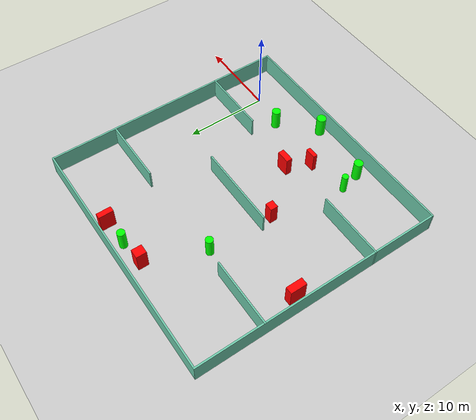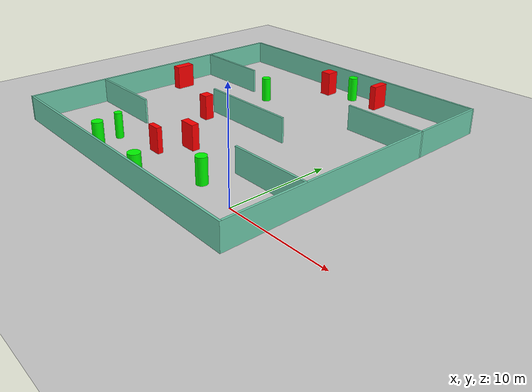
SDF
<sdf version="1.7">
 <world name="default">
  <light name="sun" type="directional">
   <pose>0 0 10 0 -0 0</pose>
   <diffuse>0.8 0.8 0.8 1</diffuse>
   <specular>0.2 0.2 0.2 1</specular>
   <attenuation>
    <range>1000</range>
    <constant>0.9</constant>
    <linear>0.01</linear>
    <quadratic>0.001</quadratic>
   </attenuation>
   <direction>-0.5 0.1 -0.9</direction>
   <spot><inner_angle>0</inner_angle><outer_angle>0</outer_angle><falloff>0</falloff></spot>
  </light>
  <model name="ground_plane">
   <static>1</static>
   <link name="link">
    <collision name="collision">
     <geometry><plane><normal>0 0 1</normal><size>100 100</size></plane></geometry>
     <surface>
      <contact><collide_bitmask>65535</collide_bitmask></contact>
      <friction><ode><mu>100</mu><mu2>50</mu2></ode></friction>
     </surface>
    </collision>
    <visual name="visual">
     <cast_shadows>0</cast_shadows>
     <geometry><plane><normal>0 0 1</normal><size>100 100</size></plane></geometry>
     <material>
      <script><uri>file://media/materials/scripts/gazebo.material</uri><name>Gazebo/Grey</name></script>
     </material>
    </visual>
   </link>
  </model>
  <gravity>0 0 -9.8</gravity>
  <magnetic_field>6e-06 2.3e-05 -4.2e-05</magnetic_field>
  <atmosphere type="adiabatic"/>
  <physics type="ode">
   <max_step_size>0.001</max_step_size>
   <real_time_factor>1</real_time_factor>
   <real_time_update_rate>1000</real_time_update_rate>
  </physics>
  <scene><ambient>0.4 0.4 0.4 1</ambient><background>0.7 0.7 0.7 1</background><shadows>1</shadows></scene>
  <spherical_coordinates>
   <surface_model>EARTH_WGS84</surface_model>
   <latitude_deg>0</latitude_deg>
   <longitude_deg>0</longitude_deg>
   <elevation>0</elevation>
   <heading_deg>0</heading_deg>
  </spherical_coordinates>
  <model name="my_base_walls">
   <link name="Wall_10">
    <collision name="Wall_10_Collision">
     <geometry><box><size>8.2 0.2 2.5</size></box></geometry>
     <pose>0 0 1.25 0 -0 0</pose>
    </collision>
    <visual name="Wall_10_Visual">
     <pose>0 0 1.25 0 -0 0</pose>
     <geometry><box><size>8.2 0.2 2.5</size></box></geometry>
     <material>
      <script><uri>file://media/materials/scripts/gazebo.material</uri><name>Gazebo/Grey</name></script>
      <ambient>0.435294 0.796078 0.67451 1</ambient>
     </material>
     <meta><layer>0</layer></meta>
    </visual>
    <pose>-11 -7 0 0 -0 0</pose>
   </link>
   <link name="Wall_12">
    <collision name="Wall_12_Collision">
     <geometry><box><size>8.2 0.2 2.5</size></box></geometry>
     <pose>0 0 1.25 0 -0 0</pose>
    </collision>
    <visual name="Wall_12_Visual">
     <pose>0 0 1.25 0 -0 0</pose>
     <geometry><box><size>8.2 0.2 2.5</size></box></geometry>
     <material>
      <script><uri>file://media/materials/scripts/gazebo.material</uri><name>Gazebo/Grey</name></script>
      <ambient>0.435294 0.796078 0.67451 1</ambient>
     </material>
     <meta><layer>0</layer></meta>
    </visual>
    <pose>-11 7 0 0 -0 0</pose>
   </link>
   <link name="Wall_14">
    <collision name="Wall_14_Collision">
     <geometry><box><size>8.2 0.2 2.5</size></box></geometry>
     <pose>0 0 1.25 0 -0 0</pose>
    </collision>
    <visual name="Wall_14_Visual">
     <pose>0 0 1.25 0 -0 0</pose>
     <geometry><box><size>8.2 0.2 2.5</size></box></geometry>
     <material>
      <script><uri>file://media/materials/scripts/gazebo.material</uri><name>Gazebo/Grey</name></script>
      <ambient>0.435294 0.796078 0.67451 1</ambient>
     </material>
     <meta><layer>0</layer></meta>
    </visual>
    <pose>11 7 0 0 -0 3.14159</pose>
   </link>
   <link name="Wall_16">
    <collision name="Wall_16_Collision">
     <geometry><box><size>10.2 0.2 2.5</size></box></geometry>
     <pose>0 0 1.25 0 -0 0</pose>
    </collision>
    <visual name="Wall_16_Visual">
     <pose>0 0 1.25 0 -0 0</pose>
     <geometry><box><size>10.2 0.2 2.5</size></box></geometry>
     <material>
      <script><uri>file://media/materials/scripts/gazebo.material</uri><name>Gazebo/Grey</name></script>
      <ambient>0.435294 0.796078 0.67451 1</ambient>
     </material>
     <meta><layer>0</layer></meta>
    </visual>
    <pose>0 0 0 0 -0 3.14159</pose>
   </link>
   <link name="Wall_2">
    <collision name="Wall_2_Collision">
     <geometry><box><size>30.2 0.2 2.5</size></box></geometry>
     <pose>0 0 1.25 0 -0 0</pose>
    </collision>
    <visual name="Wall_2_Visual">
     <pose>0 0 1.25 0 -0 0</pose>
     <geometry><box><size>30.2 0.2 2.5</size></box></geometry>
     <material>
      <script><uri>file://media/materials/scripts/gazebo.material</uri><name>Gazebo/Grey</name></script>
      <ambient>0.435294 0.796078 0.67451 1</ambient>
     </material>
     <meta><layer>0</layer></meta>
    </visual>
    <pose>0 -15 0 0 -0 3.14159</pose>
   </link>
   <link name="Wall_3">
    <collision name="Wall_3_Collision">
     <geometry><box><size>30.2 0.2 2.5</size></box></geometry>
     <pose>0 0 1.25 0 -0 0</pose>
    </collision>
    <visual name="Wall_3_Visual">
     <pose>0 0 1.25 0 -0 0</pose>
     <geometry><box><size>30.2 0.2 2.5</size></box></geometry>
     <material>
      <script><uri>file://media/materials/scripts/gazebo.material</uri><name>Gazebo/Grey</name></script>
      <ambient>0.435294 0.796078 0.67451 1</ambient>
     </material>
     <meta><layer>0</layer></meta>
    </visual>
    <pose>-15 0 0 0 -0 1.5708</pose>
   </link>
   <link name="Wall_4">
    <collision name="Wall_4_Collision">
     <geometry><box><size>30.2 0.2 2.5</size></box></geometry>
     <pose>0 0 1.25 0 -0 0</pose>
    </collision>
    <visual name="Wall_4_Visual">
     <pose>0 0 1.25 0 -0 0</pose>
     <geometry><box><size>30.2 0.2 2.5</size></box></geometry>
     <material>
      <script><uri>file://media/materials/scripts/gazebo.material</uri><name>Gazebo/Grey</name></script>
      <ambient>0.435294 0.796078 0.67451 1</ambient>
     </material>
     <meta><layer>0</layer></meta>
    </visual>
    <pose>0 15 0 0 -0 0</pose>
   </link>
   <link name="Wall_6">
    <collision name="Wall_6_Collision">
     <geometry><box><size>30.2 0.2 2.5</size></box></geometry>
     <pose>0 0 1.25 0 -0 0</pose>
    </collision>
    <visual name="Wall_6_Visual">
     <pose>0 0 1.25 0 -0 0</pose>
     <geometry><box><size>30.2 0.2 2.5</size></box></geometry>
     <material>
      <script><uri>file://media/materials/scripts/gazebo.material</uri><name>Gazebo/Grey</name></script>
      <ambient>0.435294 0.796078 0.67451 1</ambient>
     </material>
     <meta><layer>0</layer></meta>
    </visual>
    <pose>15 0 0 0 -0 1.5708</pose>
   </link>
   <link name="Wall_8">
    <collision name="Wall_8_Collision">
     <geometry><box><size>8.2 0.2 2.5</size></box></geometry>
     <pose>0 0 1.25 0 -0 0</pose>
    </collision>
    <visual name="Wall_8_Visual">
     <pose>0 0 1.25 0 -0 0</pose>
     <geometry><box><size>8.2 0.2 2.5</size></box></geometry>
     <material>
      <script><uri>file://media/materials/scripts/gazebo.material</uri><name>Gazebo/Grey</name></script>
      <ambient>0.435294 0.796078 0.67451 1</ambient>
     </material>
     <meta><layer>0</layer></meta>
    </visual>
    <pose>11 -7 0 0 -0 3.14159</pose>
   </link>
   <static>1</static>
   <pose>-11 11 0 0 -0 0</pose>
  </model>
  <model name="cylinder1">
   <static>1</static>
   <link name="link">
    <inertial>
     <mass>1</mass>
     <inertia><ixx>0.5</ixx><ixy>0</ixy><ixz>0</ixz><iyy>0.5</iyy><iyz>0</iyz><izz>1</izz></inertia>
    </inertial>
    <collision name="collision">
     <geometry><cylinder><radius>0.3788852198772357</radius><length>2.5</length></cylinder></geometry>
    </collision>
    <visual name="visual">
     <geometry><cylinder><radius>0.3788852198772357</radius><length>2.5</length></cylinder></geometry>
     <material>
      <ambient>0 1 0 1</ambient>
      <diffuse>0 1 0 1</diffuse>
      <specular>0.1 0.1 0.1 1</specular>
      <emissive>0 0 0 0</emissive>
     </material>
    </visual>
   </link>
   <pose>-16.72941311453719 0.27644103224845296 1.25 0 0 0</pose>
  </model>
  <model name="cylinder2">
   <static>1</static>
   <link name="link">
    <inertial>
     <mass>1</mass>
     <inertia><ixx>0.5</ixx><ixy>0</ixy><ixz>0</ixz><iyy>0.5</iyy><iyz>0</iyz><izz>1</izz></inertia>
    </inertial>
    <collision name="collision">
     <geometry><cylinder><radius>0.45774460024566155</radius><length>2.5</length></cylinder></geometry>
    </collision>
    <visual name="visual">
     <geometry><cylinder><radius>0.45774460024566155</radius><length>2.5</length></cylinder></geometry>
     <material>
      <ambient>0 1 0 1</ambient>
      <diffuse>0 1 0 1</diffuse>
      <specular>0.1 0.1 0.1 1</specular>
      <emissive>0 0 0 0</emissive>
     </material>
    </visual>
   </link>
   <pose>-15.13529133896144 17.294147943558887 1.25 0 0 0</pose>
  </model>
  <model name="cylinder3">
   <static>1</static>
   <link name="link">
    <inertial>
     <mass>1</mass>
     <inertia><ixx>0.5</ixx><ixy>0</ixy><ixz>0</ixz><iyy>0.5</iyy><iyz>0</iyz><izz>1</izz></inertia>
    </inertial>
    <collision name="collision">
     <geometry><cylinder><radius>0.5665680607004495</radius><length>2.5</length></cylinder></geometry>
    </collision>
    <visual name="visual">
     <geometry><cylinder><radius>0.5665680607004495</radius><length>2.5</length></cylinder></geometry>
     <material>
      <ambient>0 1 0 1</ambient>
      <diffuse>0 1 0 1</diffuse>
      <specular>0.1 0.1 0.1 1</specular>
      <emissive>0 0 0 0</emissive>
     </material>
    </visual>
   </link>
   <pose>-8.401575908006329 -2.987656765426435 1.25 0 0 0</pose>
  </model>
  <model name="cylinder4">
   <static>1</static>
   <link name="link">
    <inertial>
     <mass>1</mass>
     <inertia><ixx>0.5</ixx><ixy>0</ixy><ixz>0</ixz><iyy>0.5</iyy><iyz>0</iyz><izz>1</izz></inertia>
    </inertial>
    <collision name="collision">
     <geometry><cylinder><radius>0.5218332799016657</radius><length>2.5</length></cylinder></geometry>
    </collision>
    <visual name="visual">
     <geometry><cylinder><radius>0.5218332799016657</radius><length>2.5</length></cylinder></geometry>
     <material>
      <ambient>0 1 0 1</ambient>
      <diffuse>0 1 0 1</diffuse>
      <specular>0.1 0.1 0.1 1</specular>
      <emissive>0 0 0 0</emissive>
     </material>
    </visual>
   </link>
   <pose>-4.443460209776488 0.7566883596588618 1.25 0 0 0</pose>
  </model>
  <model name="cylinder5">
   <static>1</static>
   <link name="link">
    <inertial>
     <mass>1</mass>
     <inertia><ixx>0.5</ixx><ixy>0</ixy><ixz>0</ixz><iyy>0.5</iyy><iyz>0</iyz><izz>1</izz></inertia>
    </inertial>
    <collision name="collision">
     <geometry><cylinder><radius>0.47239498845687505</radius><length>2.5</length></cylinder></geometry>
    </collision>
    <visual name="visual">
     <geometry><cylinder><radius>0.47239498845687505</radius><length>2.5</length></cylinder></geometry>
     <material>
      <ambient>0 1 0 1</ambient>
      <diffuse>0 1 0 1</diffuse>
      <specular>0.1 0.1 0.1 1</specular>
      <emissive>0 0 0 0</emissive>
     </material>
    </visual>
   </link>
   <pose>-9.167997562438991 24.463115875287716 1.25 0 0 0</pose>
  </model>
  <model name="cylinder6">
   <static>1</static>
   <link name="link">
    <inertial>
     <mass>1</mass>
     <inertia><ixx>0.5</ixx><ixy>0</ixy><ixz>0</ixz><iyy>0.5</iyy><iyz>0</iyz><izz>1</izz></inertia>
    </inertial>
    <collision name="collision">
     <geometry><cylinder><radius>0.5280978280435613</radius><length>2.5</length></cylinder></geometry>
    </collision>
    <visual name="visual">
     <geometry><cylinder><radius>0.5280978280435613</radius><length>2.5</length></cylinder></geometry>
     <material>
      <ambient>0 1 0 1</ambient>
      <diffuse>0 1 0 1</diffuse>
      <specular>0.1 0.1 0.1 1</specular>
      <emissive>0 0 0 0</emissive>
     </material>
    </visual>
   </link>
   <pose>-16.094970720418186 -2.18480142299705 1.25 0 0 0</pose>
  </model>
  <model name="box1">
   <static>1</static>
   <link name="link">
    <inertial>
     <mass>1</mass>
     <inertia><ixx>0.083</ixx><ixy>0</ixy><ixz>0</ixz><iyy>0.083</iyy><iyz>0</iyz><izz>0.083</izz></inertia>
    </inertial>
    <collision name="collision">
     <geometry><box><size>1.3179727864985686 0.5165821452675087 2.5</size></box></geometry>
    </collision>
    <visual name="visual">
     <geometry><box><size>1.3179727864985686 0.5165821452675087 2.5</size></box></geometry>
     <material>
      <ambient>1 0 0 1</ambient>
      <diffuse>1 0 0 1</diffuse>
      <specular>0.1 0.1 0.1 1</specular>
      <emissive>0 0 0 0</emissive>
     </material>
    </visual>
    <sensor name="my_contact" type="contact">
     <contact><collision>box_collision</collision><topic>__default_topic__</topic></contact>
    </sensor>
   </link>
   <pose>-11.904442632480512 1.2297173601379843 1.25 0 0 0</pose>
  </model>
  <model name="box2">
   <static>1</static>
   <link name="link">
    <inertial>
     <mass>1</mass>
     <inertia><ixx>0.083</ixx><ixy>0</ixy><ixz>0</ixz><iyy>0.083</iyy><iyz>0</iyz><izz>0.083</izz></inertia>
    </inertial>
    <collision name="collision">
     <geometry><box><size>1.1197141059835638 1.237352962096606 2.5</size></box></geometry>
    </collision>
    <visual name="visual">
     <geometry><box><size>1.1197141059835638 1.237352962096606 2.5</size></box></geometry>
     <material>
      <ambient>1 0 0 1</ambient>
      <diffuse>1 0 0 1</diffuse>
      <specular>0.1 0.1 0.1 1</specular>
      <emissive>0 0 0 0</emissive>
     </material>
    </visual>
    <sensor name="my_contact" type="contact">
     <contact><collision>box_collision</collision><topic>__default_topic__</topic></contact>
    </sensor>
   </link>
   <pose>-12.227815365384727 24.023403085206724 1.25 0 0 0</pose>
  </model>
  <model name="box3">
   <static>1</static>
   <link name="link">
    <inertial>
     <mass>1</mass>
     <inertia><ixx>0.083</ixx><ixy>0</ixy><ixz>0</ixz><iyy>0.083</iyy><iyz>0</iyz><izz>0.083</izz></inertia>
    </inertial>
    <collision name="collision">
     <geometry><box><size>0.984363126219604 0.9171936972457884 2.5</size></box></geometry>
    </collision>
    <visual name="visual">
     <geometry><box><size>0.984363126219604 0.9171936972457884 2.5</size></box></geometry>
     <material>
      <ambient>1 0 0 1</ambient>
      <diffuse>1 0 0 1</diffuse>
      <specular>0.1 0.1 0.1 1</specular>
      <emissive>0 0 0 0</emissive>
     </material>
    </visual>
    <sensor name="my_contact" type="contact">
     <contact><collision>box_collision</collision><topic>__default_topic__</topic></contact>
    </sensor>
   </link>
   <pose>-15.275029036410581 9.366851913627352 1.25 0 0 0</pose>
  </model>
  <model name="box4">
   <static>1</static>
   <link name="link">
    <inertial>
     <mass>1</mass>
     <inertia><ixx>0.083</ixx><ixy>0</ixy><ixz>0</ixz><iyy>0.083</iyy><iyz>0</iyz><izz>0.083</izz></inertia>
    </inertial>
    <collision name="collision">
     <geometry><box><size>1.626194947333637 0.7351483978693394 2.5</size></box></geometry>
    </collision>
    <visual name="visual">
     <geometry><box><size>1.626194947333637 0.7351483978693394 2.5</size></box></geometry>
     <material>
      <ambient>1 0 0 1</ambient>
      <diffuse>1 0 0 1</diffuse>
      <specular>0.1 0.1 0.1 1</specular>
      <emissive>0 0 0 0</emissive>
     </material>
    </visual>
    <sensor name="my_contact" type="contact">
     <contact><collision>box_collision</collision><topic>__default_topic__</topic></contact>
    </sensor>
   </link>
   <pose>-10.560062451476968 4.02279625450114 1.25 0 0 0</pose>
  </model>
  <model name="box5">
   <static>1</static>
   <link name="link">
    <inertial>
     <mass>1</mass>
     <inertia><ixx>0.083</ixx><ixy>0</ixy><ixz>0</ixz><iyy>0.083</iyy><iyz>0</iyz><izz>0.083</izz></inertia>
    </inertial>
    <collision name="collision">
     <geometry><box><size>0.8701481110553428 1.978891011410733 2.5</size></box></geometry>
    </collision>
    <visual name="visual">
     <geometry><box><size>0.8701481110553428 1.978891011410733 2.5</size></box></geometry>
     <material>
      <ambient>1 0 0 1</ambient>
      <diffuse>1 0 0 1</diffuse>
      <specular>0.1 0.1 0.1 1</specular>
      <emissive>0 0 0 0</emissive>
     </material>
    </visual>
    <sensor name="my_contact" type="contact">
     <contact><collision>box_collision</collision><topic>__default_topic__</topic></contact>
    </sensor>
   </link>
   <pose>-24.535603182881445 13.082882896123852 1.25 0 0 0</pose>
  </model>
  <model name="box6">
   <static>1</static>
   <link name="link">
    <inertial>
     <mass>1</mass>
     <inertia><ixx>0.083</ixx><ixy>0</ixy><ixz>0</ixz><iyy>0.083</iyy><iyz>0</iyz><izz>0.083</izz></inertia>
    </inertial>
    <collision name="collision">
     <geometry><box><size>0.6737216035918829 1.7711011037094602 2.5</size></box></geometry>
    </collision>
    <visual name="visual">
     <geometry><box><size>0.6737216035918829 1.7711011037094602 2.5</size></box></geometry>
     <material>
      <ambient>1 0 0 1</ambient>
      <diffuse>1 0 0 1</diffuse>
      <specular>0.1 0.1 0.1 1</specular>
      <emissive>0 0 0 0</emissive>
     </material>
    </visual>
    <sensor name="my_contact" type="contact">
     <contact><collision>box_collision</collision><topic>__default_topic__</topic></contact>
    </sensor>
   </link>
   <pose>-5.945644339258319 24.646473993917386 1.25 0 0 0</pose>
  </model>
 </world>
</sdf>
